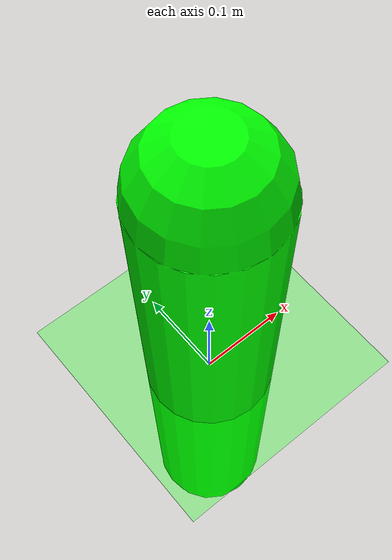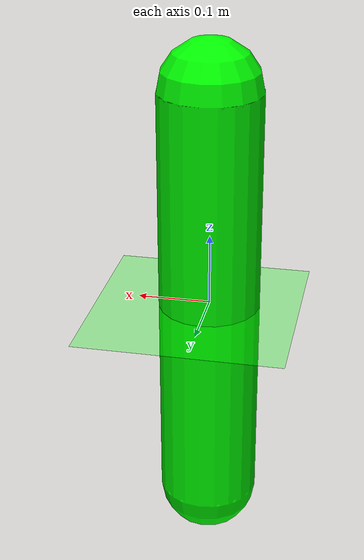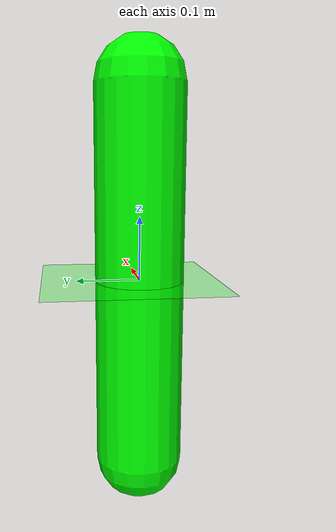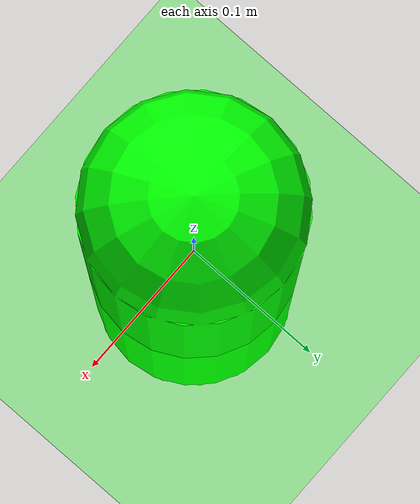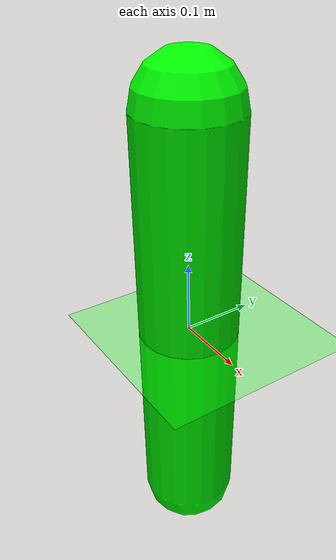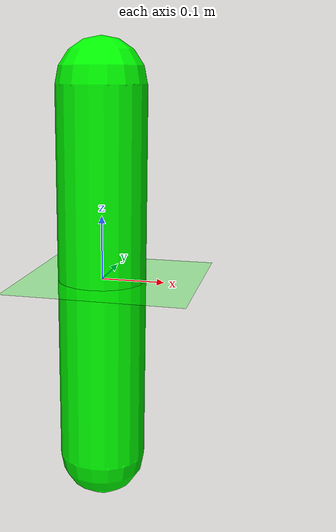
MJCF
<mujoco>
  <default>
    <geom rgba="0 1 0 1"/>
    <default class="walker">
      <geom type="capsule"/>
        <default class="class_arm">
          <geom size="0.01 0.1" solimp=".9 .99 .003" solref=".015 1"/>
        </default>
    </default>
  </default>

  <worldbody>
    <geom name="floor" type="plane" conaffinity="1" pos="248 0 0" size="250 .8 .2" zaxis="0 0 1"/>
    <body name="torso" childclass="walker">
      <geom name="torso" size="0.07 0.3"/>
      <body name="arm">
        <geom name="torso2" size="0.07 0.3" class="class_arm"/>
      </body>
    </body>
  </worldbody>
</mujoco>
